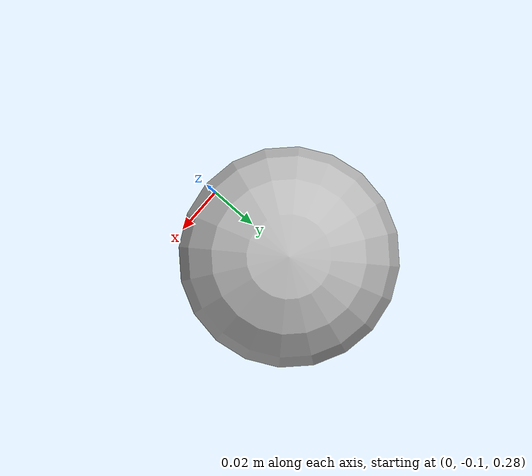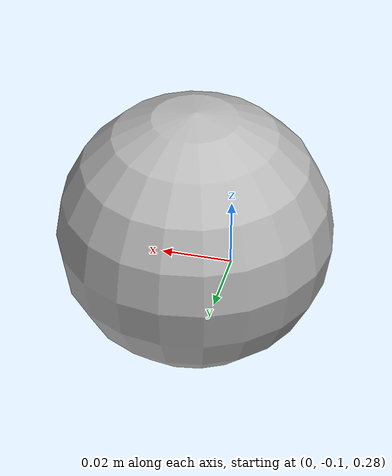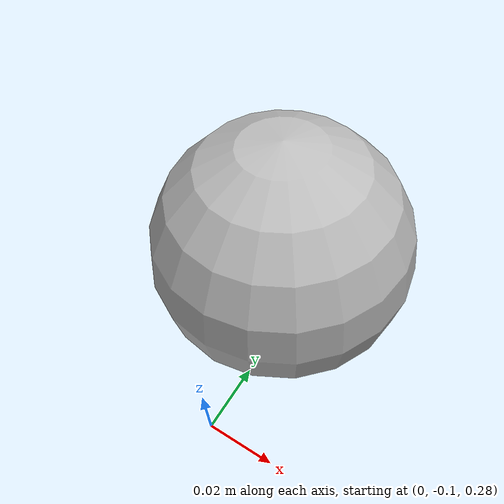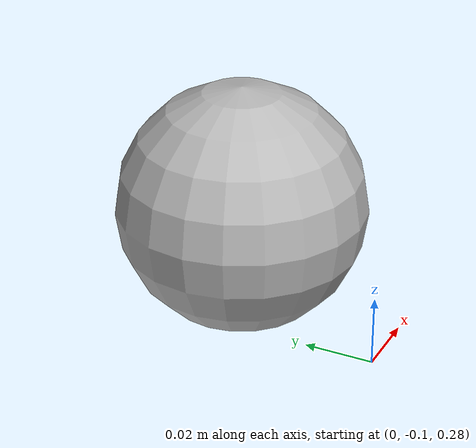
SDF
<sdf version='1.7'>
<world name="default">
  <!-- Define the physics properties -->
  <physics type="ode">
    <gravity x="0" y="0" z="-9.81"/> <!-- Default gravity for other objects -->
  </physics>

  <include>
      <uri>model://sun</uri>
  </include>
    <!-- A ground plane -->
  <include>
      <uri>model://ground_plane</uri>
  </include>

  <!-- Define the sphere model -->
  <model name="non_gravity_sphere">
    <pose>0 -0.06 0.32 0 0 0</pose> <!-- Position the sphere at coordinates (0, 0, 1) -->
    <static>false</static> <!-- Make the sphere movable -->
    <link name="link1">
      <collision name="collision1">
        <geometry>
          <sphere>
            <radius>0.035</radius> <!-- Set the radius of the sphere -->
          </sphere>
        </geometry>
      </collision>
      <visual name="visual1">
        <geometry>
          <sphere>
            <radius>0.035</radius> <!-- Same radius as the collision -->
          </sphere>
        </geometry>
      </visual>
      <gravity>false</gravity>
    </link>
    <gravity>false</gravity> <!-- Disable gravity for this sphere -->
  </model>

</world>
</sdf>
